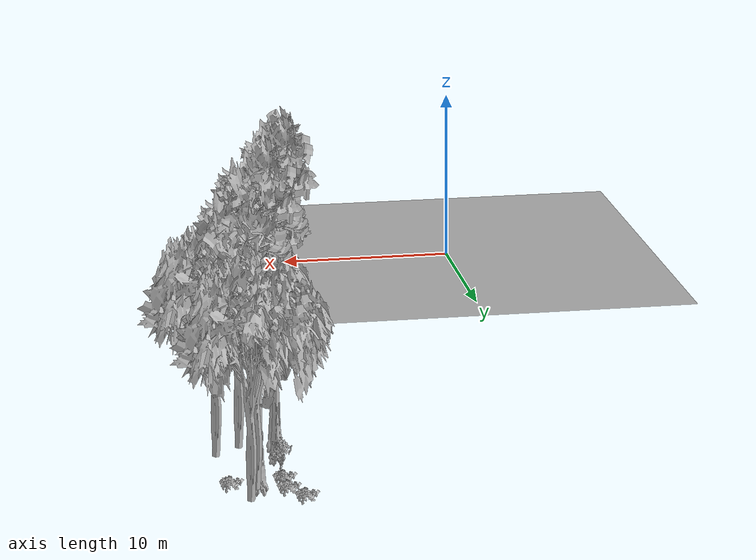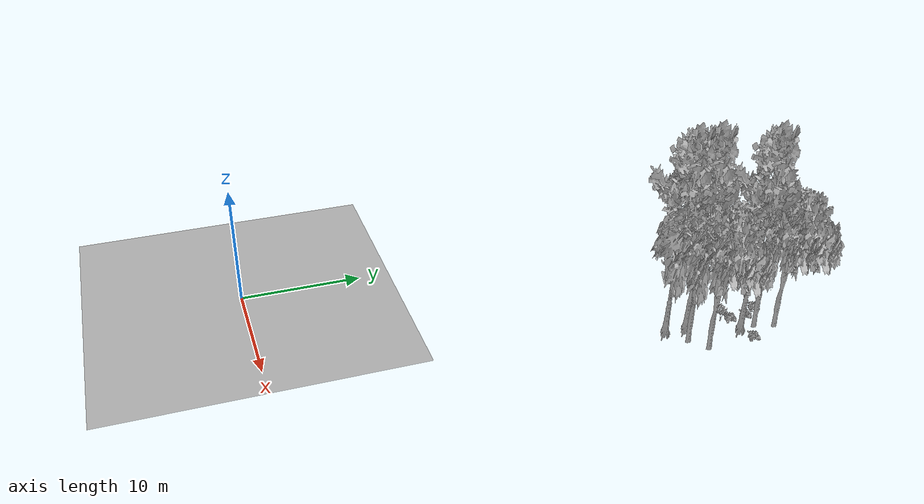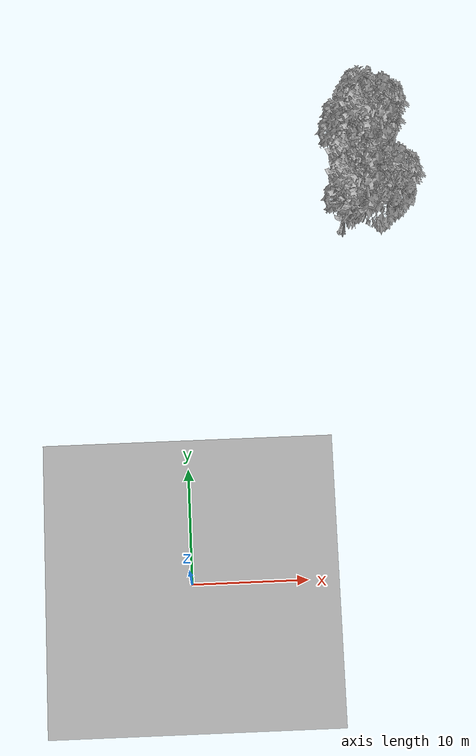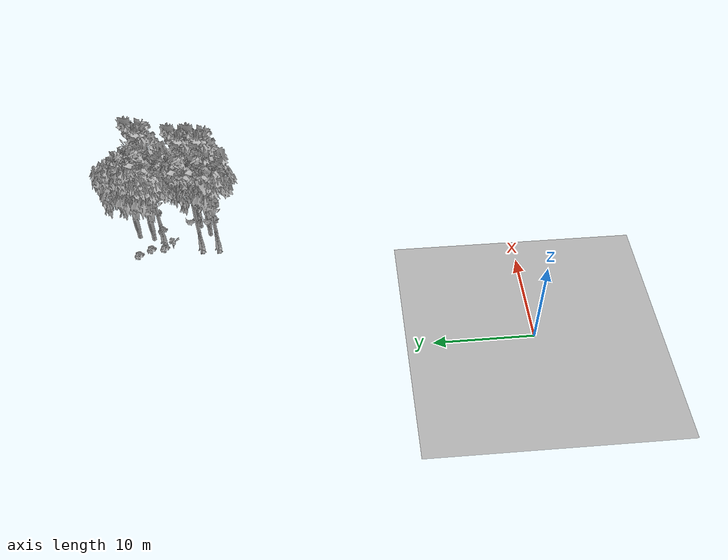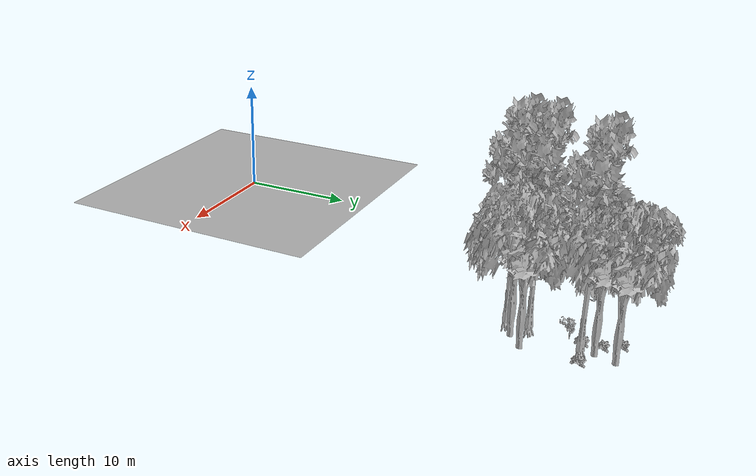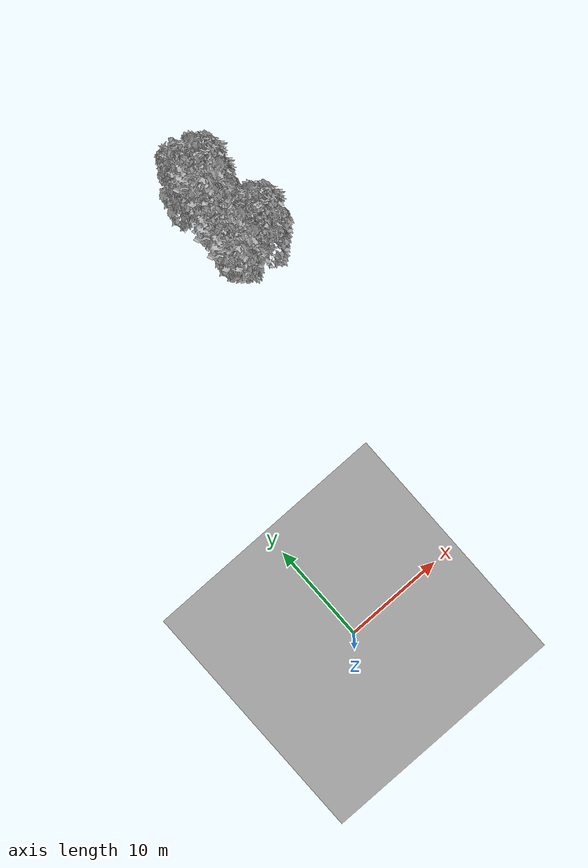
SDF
<sdf version="1.7">
 <world name="default">
  <model name="ground_plane">
   <static>1</static>
   <link name="link">
    <collision name="collision">
     <pose>-50 0 0 0 -0 0</pose>
     <geometry><plane><normal>0 0 1</normal><size>80 80</size></plane></geometry>
     <surface><contact><ode><min_depth>0.01</min_depth><max_vel>0</max_vel></ode></contact></surface>
    </collision>
    <visual name="grass">
     <cast_shadows>0</cast_shadows>
     <geometry>
      <mesh>
       <scale>0.46714285714285714 0.46714285714285714 0.1</scale>
       <uri>file://grass_plane/meshes/grass_plane.dae</uri>
      </mesh>
     </geometry>
    </visual>
   </link>
  </model>
  <model name="Tree 24">
   <static>1</static>
   <pose>16.35669794025045 32.11043431280959 0 1.57079 -0 0</pose>
   <link name="link">
    <collision name="collision">
     <geometry><mesh><scale>3.5 5 3.5</scale><uri>model://tree_2/meshes/tree_2.obj</uri></mesh></geometry>
    </collision>
    <visual name="visual">
     <geometry><mesh><scale>3.5 5 3.5</scale><uri>model://tree_2/meshes/tree_2.obj</uri></mesh></geometry>
    </visual>
   </link>
  </model>
  <model name="Tree 104">
   <static>1</static>
   <pose>14.538292928186145 31.227056305852642 0 1.57079 -0 0</pose>
   <link name="link">
    <collision name="collision">
     <geometry><mesh><scale>3.5 5 3.5</scale><uri>model://tree_9/meshes/tree_9.obj</uri></mesh></geometry>
    </collision>
    <visual name="visual">
     <geometry><mesh><scale>3.5 5 3.5</scale><uri>model://tree_9/meshes/tree_9.obj</uri></mesh></geometry>
    </visual>
   </link>
  </model>
  <model name="Tree 169">
   <static>1</static>
   <pose>17.626254573961567 33.182883287391206 0 1.57079 -0 0</pose>
   <link name="link">
    <collision name="collision">
     <geometry><mesh><scale>3.5 5 3.5</scale><uri>model://tree_2/meshes/tree_2.obj</uri></mesh></geometry>
    </collision>
    <visual name="visual">
     <geometry><mesh><scale>3.5 5 3.5</scale><uri>model://tree_2/meshes/tree_2.obj</uri></mesh></geometry>
    </visual>
   </link>
  </model>
  <model name="Tree 343">
   <static>1</static>
   <pose>16.17138893416646 38.10317314799492 0 1.57079 -0 0</pose>
   <link name="link">
    <collision name="collision">
     <geometry><mesh><scale>3.5 5 3.5</scale><uri>model://tree_2/meshes/tree_2.obj</uri></mesh></geometry>
    </collision>
    <visual name="visual">
     <geometry><mesh><scale>3.5 5 3.5</scale><uri>model://tree_2/meshes/tree_2.obj</uri></mesh></geometry>
    </visual>
   </link>
  </model>
  <model name="Tree 425">
   <static>1</static>
   <pose>14.636779813328118 32.98988852588731 0 1.57079 -0 0</pose>
   <link name="link">
    <collision name="collision">
     <geometry><mesh><scale>3.5 5 3.5</scale><uri>model://tree_9/meshes/tree_9.obj</uri></mesh></geometry>
    </collision>
    <visual name="visual">
     <geometry><mesh><scale>3.5 5 3.5</scale><uri>model://tree_9/meshes/tree_9.obj</uri></mesh></geometry>
    </visual>
   </link>
  </model>
  <model name="Tree 427">
   <static>1</static>
   <pose>16.000450897639467 37.10085588573726 0 1.57079 -0 0</pose>
   <link name="link">
    <collision name="collision">
     <geometry><mesh><scale>3.5 5 3.5</scale><uri>model://tree_9/meshes/tree_9.obj</uri></mesh></geometry>
    </collision>
    <visual name="visual">
     <geometry><mesh><scale>3.5 5 3.5</scale><uri>model://tree_9/meshes/tree_9.obj</uri></mesh></geometry>
    </visual>
   </link>
  </model>
  <model name="Tree 455">
   <static>1</static>
   <pose>16.614475751431087 39.65834644089699 0 1.57079 -0 0</pose>
   <link name="link">
    <collision name="collision">
     <geometry><mesh><scale>3.5 5 3.5</scale><uri>model://tree_2/meshes/tree_2.obj</uri></mesh></geometry>
    </collision>
    <visual name="visual">
     <geometry><mesh><scale>3.5 5 3.5</scale><uri>model://tree_2/meshes/tree_2.obj</uri></mesh></geometry>
    </visual>
   </link>
  </model>
  <model name="Bush 114">
   <static>1</static>
   <pose>14.824933501830579 36.01672874912198 0 1.57079 -0 0</pose>
   <link name="link">
    <collision name="collision">
     <geometry><mesh><scale>2 2 2</scale><uri>model://bush_5/meshes/bush_5.obj</uri></mesh></geometry>
     <surface><contact><collide_without_contact>false</collide_without_contact></contact></surface>
    </collision>
    <visual name="visual">
     <geometry><mesh><scale>2 2 2</scale><uri>model://bush_5/meshes/bush_5.obj</uri></mesh></geometry>
    </visual>
   </link>
  </model>
  <model name="Bush 182">
   <static>1</static>
   <pose>14.714565086108642 38.328037085637135 0 1.57079 -0 0</pose>
   <link name="link">
    <collision name="collision">
     <geometry><mesh><scale>2 2 2</scale><uri>model://bush_2/meshes/bush_2.obj</uri></mesh></geometry>
     <surface><contact><collide_without_contact>false</collide_without_contact></contact></surface>
    </collision>
    <visual name="visual">
     <geometry><mesh><scale>2 2 2</scale><uri>model://bush_2/meshes/bush_2.obj</uri></mesh></geometry>
    </visual>
   </link>
  </model>
  <model name="Bush 210">
   <static>1</static>
   <pose>17.43533137934871 37.33841958064244 0 1.57079 -0 0</pose>
   <link name="link">
    <collision name="collision">
     <geometry><mesh><scale>2 2 2</scale><uri>model://bush_2/meshes/bush_2.obj</uri></mesh></geometry>
     <surface><contact><collide_without_contact>false</collide_without_contact></contact></surface>
    </collision>
    <visual name="visual">
     <geometry><mesh><scale>2 2 2</scale><uri>model://bush_2/meshes/bush_2.obj</uri></mesh></geometry>
    </visual>
   </link>
  </model>
  <model name="Bush 543">
   <static>1</static>
   <pose>14.747090486580454 36.91461288469907 0 1.57079 -0 0</pose>
   <link name="link">
    <collision name="collision">
     <geometry><mesh><scale>2 2 2</scale><uri>model://bush_2/meshes/bush_2.obj</uri></mesh></geometry>
     <surface><contact><collide_without_contact>false</collide_without_contact></contact></surface>
    </collision>
    <visual name="visual">
     <geometry><mesh><scale>2 2 2</scale><uri>model://bush_2/meshes/bush_2.obj</uri></mesh></geometry>
    </visual>
   </link>
  </model>
  <model name="Bush 639">
   <static>1</static>
   <pose>13.981839555233222 39.55418494557958 0 1.57079 -0 0</pose>
   <link name="link">
    <collision name="collision">
     <geometry><mesh><scale>2 2 2</scale><uri>model://bush_2/meshes/bush_2.obj</uri></mesh></geometry>
     <surface><contact><collide_without_contact>false</collide_without_contact></contact></surface>
    </collision>
    <visual name="visual">
     <geometry><mesh><scale>2 2 2</scale><uri>model://bush_2/meshes/bush_2.obj</uri></mesh></geometry>
    </visual>
   </link>
  </model>
 </world>
</sdf>
